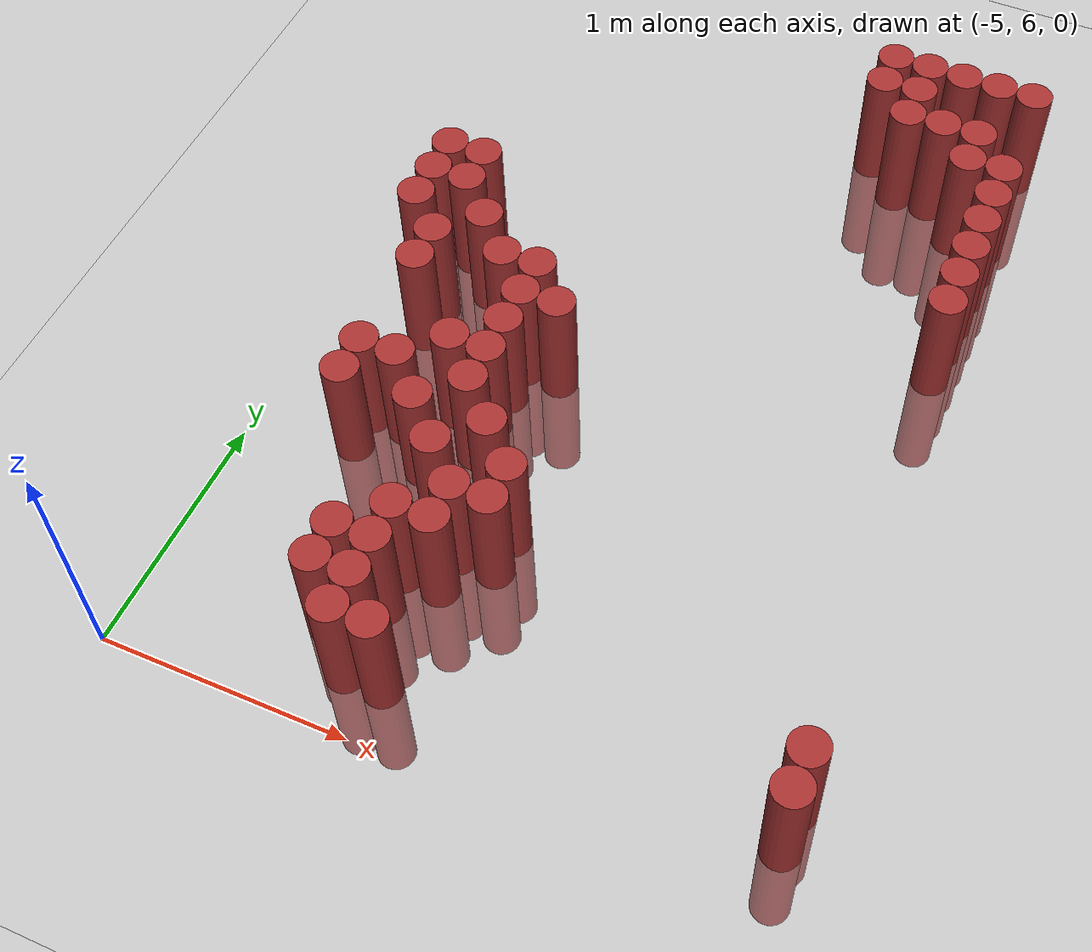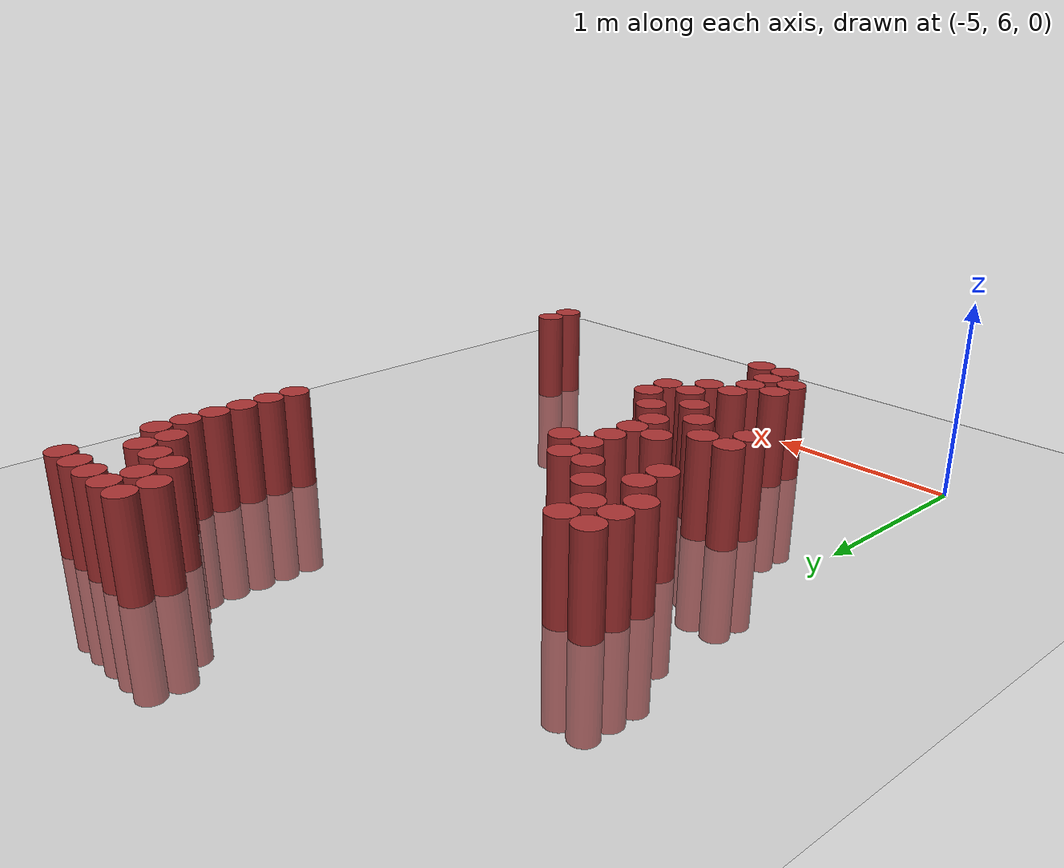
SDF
<sdf version="1.6">
 <world name="default">
  <model name="ground_plane">
   <static>1</static>
   <link name="link">
    <collision name="collision">
     <geometry><plane><normal>0 0 1</normal><size>100 100</size></plane></geometry>
     <surface><friction><ode><mu>100</mu><mu2>50</mu2></ode></friction></surface>
    </collision>
    <visual name="visual">
     <cast_shadows>0</cast_shadows>
     <geometry><plane><normal>0 0 1</normal><size>100 100</size></plane></geometry>
     <material>
      <script><uri>file://media/materials/scripts/gazebo.material</uri><name>Gazebo/Grey</name></script>
     </material>
    </visual>
   </link>
  </model>
  <model name="unit_cylinder_270">
   <static>1</static>
   <pose>-4.725000 8.025000 0.000000 0.000000 0.000000 0.000000</pose>
   <link name="link">
    <inertial>
     <mass>1</mass>
     <inertia><ixx>0.145833</ixx><ixy>0</ixy><ixz>0</ixz><iyy>0.145833</iyy><iyz>0</iyz><izz>0.125</izz></inertia>
    </inertial>
    <collision name="collision">
     <geometry><cylinder><radius>0.075000</radius><length>1</length></cylinder></geometry>
    </collision>
    <visual name="visual">
     <geometry><cylinder><radius>0.075000</radius><length>1</length></cylinder></geometry>
     <material>
      <ambient>0.648000 0.192000 0.192000 1</ambient>
      <diffuse>0.648000 0.192000 0.192000 1</diffuse>
     </material>
     <material>
      <script><name>Gazebo/Grey</name><uri>file://media/materials/scripts/gazebo.material</uri></script>
     </material>
    </visual>
   </link>
  </model>
  <model name="unit_cylinder_271">
   <static>1</static>
   <pose>-4.725000 8.175000 0.000000 0.000000 0.000000 0.000000</pose>
   <link name="link">
    <inertial>
     <mass>1</mass>
     <inertia><ixx>0.145833</ixx><ixy>0</ixy><ixz>0</ixz><iyy>0.145833</iyy><iyz>0</iyz><izz>0.125</izz></inertia>
    </inertial>
    <collision name="collision">
     <geometry><cylinder><radius>0.075000</radius><length>1</length></cylinder></geometry>
    </collision>
    <visual name="visual">
     <geometry><cylinder><radius>0.075000</radius><length>1</length></cylinder></geometry>
     <material>
      <ambient>0.648000 0.192000 0.192000 1</ambient>
      <diffuse>0.648000 0.192000 0.192000 1</diffuse>
     </material>
     <material>
      <script><name>Gazebo/Grey</name><uri>file://media/materials/scripts/gazebo.material</uri></script>
     </material>
    </visual>
   </link>
  </model>
  <model name="unit_cylinder_272">
   <static>1</static>
   <pose>-4.725000 8.325000 0.000000 0.000000 0.000000 0.000000</pose>
   <link name="link">
    <inertial>
     <mass>1</mass>
     <inertia><ixx>0.145833</ixx><ixy>0</ixy><ixz>0</ixz><iyy>0.145833</iyy><iyz>0</iyz><izz>0.125</izz></inertia>
    </inertial>
    <collision name="collision">
     <geometry><cylinder><radius>0.075000</radius><length>1</length></cylinder></geometry>
    </collision>
    <visual name="visual">
     <geometry><cylinder><radius>0.075000</radius><length>1</length></cylinder></geometry>
     <material>
      <ambient>0.648000 0.192000 0.192000 1</ambient>
      <diffuse>0.648000 0.192000 0.192000 1</diffuse>
     </material>
     <material>
      <script><name>Gazebo/Grey</name><uri>file://media/materials/scripts/gazebo.material</uri></script>
     </material>
    </visual>
   </link>
  </model>
  <model name="unit_cylinder_275">
   <static>1</static>
   <pose>-4.575000 7.125000 0.000000 0.000000 0.000000 0.000000</pose>
   <link name="link">
    <inertial>
     <mass>1</mass>
     <inertia><ixx>0.145833</ixx><ixy>0</ixy><ixz>0</ixz><iyy>0.145833</iyy><iyz>0</iyz><izz>0.125</izz></inertia>
    </inertial>
    <collision name="collision">
     <geometry><cylinder><radius>0.075000</radius><length>1</length></cylinder></geometry>
    </collision>
    <visual name="visual">
     <geometry><cylinder><radius>0.075000</radius><length>1</length></cylinder></geometry>
     <material>
      <ambient>0.648000 0.192000 0.192000 1</ambient>
      <diffuse>0.648000 0.192000 0.192000 1</diffuse>
     </material>
     <material>
      <script><name>Gazebo/Grey</name><uri>file://media/materials/scripts/gazebo.material</uri></script>
     </material>
    </visual>
   </link>
  </model>
  <model name="unit_cylinder_276">
   <static>1</static>
   <pose>-4.575000 7.275000 0.000000 0.000000 0.000000 0.000000</pose>
   <link name="link">
    <inertial>
     <mass>1</mass>
     <inertia><ixx>0.145833</ixx><ixy>0</ixy><ixz>0</ixz><iyy>0.145833</iyy><iyz>0</iyz><izz>0.125</izz></inertia>
    </inertial>
    <collision name="collision">
     <geometry><cylinder><radius>0.075000</radius><length>1</length></cylinder></geometry>
    </collision>
    <visual name="visual">
     <geometry><cylinder><radius>0.075000</radius><length>1</length></cylinder></geometry>
     <material>
      <ambient>0.648000 0.192000 0.192000 1</ambient>
      <diffuse>0.648000 0.192000 0.192000 1</diffuse>
     </material>
     <material>
      <script><name>Gazebo/Grey</name><uri>file://media/materials/scripts/gazebo.material</uri></script>
     </material>
    </visual>
   </link>
  </model>
  <model name="unit_cylinder_277">
   <static>1</static>
   <pose>-4.575000 7.725000 0.000000 0.000000 0.000000 0.000000</pose>
   <link name="link">
    <inertial>
     <mass>1</mass>
     <inertia><ixx>0.145833</ixx><ixy>0</ixy><ixz>0</ixz><iyy>0.145833</iyy><iyz>0</iyz><izz>0.125</izz></inertia>
    </inertial>
    <collision name="collision">
     <geometry><cylinder><radius>0.075000</radius><length>1</length></cylinder></geometry>
    </collision>
    <visual name="visual">
     <geometry><cylinder><radius>0.075000</radius><length>1</length></cylinder></geometry>
     <material>
      <ambient>0.648000 0.192000 0.192000 1</ambient>
      <diffuse>0.648000 0.192000 0.192000 1</diffuse>
     </material>
     <material>
      <script><name>Gazebo/Grey</name><uri>file://media/materials/scripts/gazebo.material</uri></script>
     </material>
    </visual>
   </link>
  </model>
  <model name="unit_cylinder_278">
   <static>1</static>
   <pose>-4.575000 7.875000 0.000000 0.000000 0.000000 0.000000</pose>
   <link name="link">
    <inertial>
     <mass>1</mass>
     <inertia><ixx>0.145833</ixx><ixy>0</ixy><ixz>0</ixz><iyy>0.145833</iyy><iyz>0</iyz><izz>0.125</izz></inertia>
    </inertial>
    <collision name="collision">
     <geometry><cylinder><radius>0.075000</radius><length>1</length></cylinder></geometry>
    </collision>
    <visual name="visual">
     <geometry><cylinder><radius>0.075000</radius><length>1</length></cylinder></geometry>
     <material>
      <ambient>0.648000 0.192000 0.192000 1</ambient>
      <diffuse>0.648000 0.192000 0.192000 1</diffuse>
     </material>
     <material>
      <script><name>Gazebo/Grey</name><uri>file://media/materials/scripts/gazebo.material</uri></script>
     </material>
    </visual>
   </link>
  </model>
  <model name="unit_cylinder_279">
   <static>1</static>
   <pose>-4.575000 8.175000 0.000000 0.000000 0.000000 0.000000</pose>
   <link name="link">
    <inertial>
     <mass>1</mass>
     <inertia><ixx>0.145833</ixx><ixy>0</ixy><ixz>0</ixz><iyy>0.145833</iyy><iyz>0</iyz><izz>0.125</izz></inertia>
    </inertial>
    <collision name="collision">
     <geometry><cylinder><radius>0.075000</radius><length>1</length></cylinder></geometry>
    </collision>
    <visual name="visual">
     <geometry><cylinder><radius>0.075000</radius><length>1</length></cylinder></geometry>
     <material>
      <ambient>0.648000 0.192000 0.192000 1</ambient>
      <diffuse>0.648000 0.192000 0.192000 1</diffuse>
     </material>
     <material>
      <script><name>Gazebo/Grey</name><uri>file://media/materials/scripts/gazebo.material</uri></script>
     </material>
    </visual>
   </link>
  </model>
  <model name="unit_cylinder_280">
   <static>1</static>
   <pose>-4.575000 8.325000 0.000000 0.000000 0.000000 0.000000</pose>
   <link name="link">
    <inertial>
     <mass>1</mass>
     <inertia><ixx>0.145833</ixx><ixy>0</ixy><ixz>0</ixz><iyy>0.145833</iyy><iyz>0</iyz><izz>0.125</izz></inertia>
    </inertial>
    <collision name="collision">
     <geometry><cylinder><radius>0.075000</radius><length>1</length></cylinder></geometry>
    </collision>
    <visual name="visual">
     <geometry><cylinder><radius>0.075000</radius><length>1</length></cylinder></geometry>
     <material>
      <ambient>0.648000 0.192000 0.192000 1</ambient>
      <diffuse>0.648000 0.192000 0.192000 1</diffuse>
     </material>
     <material>
      <script><name>Gazebo/Grey</name><uri>file://media/materials/scripts/gazebo.material</uri></script>
     </material>
    </visual>
   </link>
  </model>
  <model name="unit_cylinder_283">
   <static>1</static>
   <pose>-4.425000 7.275000 0.000000 0.000000 0.000000 0.000000</pose>
   <link name="link">
    <inertial>
     <mass>1</mass>
     <inertia><ixx>0.145833</ixx><ixy>0</ixy><ixz>0</ixz><iyy>0.145833</iyy><iyz>0</iyz><izz>0.125</izz></inertia>
    </inertial>
    <collision name="collision">
     <geometry><cylinder><radius>0.075000</radius><length>1</length></cylinder></geometry>
    </collision>
    <visual name="visual">
     <geometry><cylinder><radius>0.075000</radius><length>1</length></cylinder></geometry>
     <material>
      <ambient>0.648000 0.192000 0.192000 1</ambient>
      <diffuse>0.648000 0.192000 0.192000 1</diffuse>
     </material>
     <material>
      <script><name>Gazebo/Grey</name><uri>file://media/materials/scripts/gazebo.material</uri></script>
     </material>
    </visual>
   </link>
  </model>
  <model name="unit_cylinder_284">
   <static>1</static>
   <pose>-4.425000 8.025000 0.000000 0.000000 0.000000 0.000000</pose>
   <link name="link">
    <inertial>
     <mass>1</mass>
     <inertia><ixx>0.145833</ixx><ixy>0</ixy><ixz>0</ixz><iyy>0.145833</iyy><iyz>0</iyz><izz>0.125</izz></inertia>
    </inertial>
    <collision name="collision">
     <geometry><cylinder><radius>0.075000</radius><length>1</length></cylinder></geometry>
    </collision>
    <visual name="visual">
     <geometry><cylinder><radius>0.075000</radius><length>1</length></cylinder></geometry>
     <material>
      <ambient>0.648000 0.192000 0.192000 1</ambient>
      <diffuse>0.648000 0.192000 0.192000 1</diffuse>
     </material>
     <material>
      <script><name>Gazebo/Grey</name><uri>file://media/materials/scripts/gazebo.material</uri></script>
     </material>
    </visual>
   </link>
  </model>
  <model name="unit_cylinder_288">
   <static>1</static>
   <pose>-4.275000 6.375000 0.000000 0.000000 0.000000 0.000000</pose>
   <link name="link">
    <inertial>
     <mass>1</mass>
     <inertia><ixx>0.145833</ixx><ixy>0</ixy><ixz>0</ixz><iyy>0.145833</iyy><iyz>0</iyz><izz>0.125</izz></inertia>
    </inertial>
    <collision name="collision">
     <geometry><cylinder><radius>0.075000</radius><length>1</length></cylinder></geometry>
    </collision>
    <visual name="visual">
     <geometry><cylinder><radius>0.075000</radius><length>1</length></cylinder></geometry>
     <material>
      <ambient>0.648000 0.192000 0.192000 1</ambient>
      <diffuse>0.648000 0.192000 0.192000 1</diffuse>
     </material>
     <material>
      <script><name>Gazebo/Grey</name><uri>file://media/materials/scripts/gazebo.material</uri></script>
     </material>
    </visual>
   </link>
  </model>
  <model name="unit_cylinder_289">
   <static>1</static>
   <pose>-4.275000 6.525000 0.000000 0.000000 0.000000 0.000000</pose>
   <link name="link">
    <inertial>
     <mass>1</mass>
     <inertia><ixx>0.145833</ixx><ixy>0</ixy><ixz>0</ixz><iyy>0.145833</iyy><iyz>0</iyz><izz>0.125</izz></inertia>
    </inertial>
    <collision name="collision">
     <geometry><cylinder><radius>0.075000</radius><length>1</length></cylinder></geometry>
    </collision>
    <visual name="visual">
     <geometry><cylinder><radius>0.075000</radius><length>1</length></cylinder></geometry>
     <material>
      <ambient>0.648000 0.192000 0.192000 1</ambient>
      <diffuse>0.648000 0.192000 0.192000 1</diffuse>
     </material>
     <material>
      <script><name>Gazebo/Grey</name><uri>file://media/materials/scripts/gazebo.material</uri></script>
     </material>
    </visual>
   </link>
  </model>
  <model name="unit_cylinder_290">
   <static>1</static>
   <pose>-4.275000 7.125000 0.000000 0.000000 0.000000 0.000000</pose>
   <link name="link">
    <inertial>
     <mass>1</mass>
     <inertia><ixx>0.145833</ixx><ixy>0</ixy><ixz>0</ixz><iyy>0.145833</iyy><iyz>0</iyz><izz>0.125</izz></inertia>
    </inertial>
    <collision name="collision">
     <geometry><cylinder><radius>0.075000</radius><length>1</length></cylinder></geometry>
    </collision>
    <visual name="visual">
     <geometry><cylinder><radius>0.075000</radius><length>1</length></cylinder></geometry>
     <material>
      <ambient>0.648000 0.192000 0.192000 1</ambient>
      <diffuse>0.648000 0.192000 0.192000 1</diffuse>
     </material>
     <material>
      <script><name>Gazebo/Grey</name><uri>file://media/materials/scripts/gazebo.material</uri></script>
     </material>
    </visual>
   </link>
  </model>
  <model name="unit_cylinder_291">
   <static>1</static>
   <pose>-4.275000 7.425000 0.000000 0.000000 0.000000 0.000000</pose>
   <link name="link">
    <inertial>
     <mass>1</mass>
     <inertia><ixx>0.145833</ixx><ixy>0</ixy><ixz>0</ixz><iyy>0.145833</iyy><iyz>0</iyz><izz>0.125</izz></inertia>
    </inertial>
    <collision name="collision">
     <geometry><cylinder><radius>0.075000</radius><length>1</length></cylinder></geometry>
    </collision>
    <visual name="visual">
     <geometry><cylinder><radius>0.075000</radius><length>1</length></cylinder></geometry>
     <material>
      <ambient>0.648000 0.192000 0.192000 1</ambient>
      <diffuse>0.648000 0.192000 0.192000 1</diffuse>
     </material>
     <material>
      <script><name>Gazebo/Grey</name><uri>file://media/materials/scripts/gazebo.material</uri></script>
     </material>
    </visual>
   </link>
  </model>
  <model name="unit_cylinder_292">
   <static>1</static>
   <pose>-4.275000 7.875000 0.000000 0.000000 0.000000 0.000000</pose>
   <link name="link">
    <inertial>
     <mass>1</mass>
     <inertia><ixx>0.145833</ixx><ixy>0</ixy><ixz>0</ixz><iyy>0.145833</iyy><iyz>0</iyz><izz>0.125</izz></inertia>
    </inertial>
    <collision name="collision">
     <geometry><cylinder><radius>0.075000</radius><length>1</length></cylinder></geometry>
    </collision>
    <visual name="visual">
     <geometry><cylinder><radius>0.075000</radius><length>1</length></cylinder></geometry>
     <material>
      <ambient>0.648000 0.192000 0.192000 1</ambient>
      <diffuse>0.648000 0.192000 0.192000 1</diffuse>
     </material>
     <material>
      <script><name>Gazebo/Grey</name><uri>file://media/materials/scripts/gazebo.material</uri></script>
     </material>
    </visual>
   </link>
  </model>
  <model name="unit_cylinder_295">
   <static>1</static>
   <pose>-4.125000 6.225000 0.000000 0.000000 0.000000 0.000000</pose>
   <link name="link">
    <inertial>
     <mass>1</mass>
     <inertia><ixx>0.145833</ixx><ixy>0</ixy><ixz>0</ixz><iyy>0.145833</iyy><iyz>0</iyz><izz>0.125</izz></inertia>
    </inertial>
    <collision name="collision">
     <geometry><cylinder><radius>0.075000</radius><length>1</length></cylinder></geometry>
    </collision>
    <visual name="visual">
     <geometry><cylinder><radius>0.075000</radius><length>1</length></cylinder></geometry>
     <material>
      <ambient>0.648000 0.192000 0.192000 1</ambient>
      <diffuse>0.648000 0.192000 0.192000 1</diffuse>
     </material>
     <material>
      <script><name>Gazebo/Grey</name><uri>file://media/materials/scripts/gazebo.material</uri></script>
     </material>
    </visual>
   </link>
  </model>
  <model name="unit_cylinder_296">
   <static>1</static>
   <pose>-4.125000 6.375000 0.000000 0.000000 0.000000 0.000000</pose>
   <link name="link">
    <inertial>
     <mass>1</mass>
     <inertia><ixx>0.145833</ixx><ixy>0</ixy><ixz>0</ixz><iyy>0.145833</iyy><iyz>0</iyz><izz>0.125</izz></inertia>
    </inertial>
    <collision name="collision">
     <geometry><cylinder><radius>0.075000</radius><length>1</length></cylinder></geometry>
    </collision>
    <visual name="visual">
     <geometry><cylinder><radius>0.075000</radius><length>1</length></cylinder></geometry>
     <material>
      <ambient>0.648000 0.192000 0.192000 1</ambient>
      <diffuse>0.648000 0.192000 0.192000 1</diffuse>
     </material>
     <material>
      <script><name>Gazebo/Grey</name><uri>file://media/materials/scripts/gazebo.material</uri></script>
     </material>
    </visual>
   </link>
  </model>
  <model name="unit_cylinder_297">
   <static>1</static>
   <pose>-4.125000 6.525000 0.000000 0.000000 0.000000 0.000000</pose>
   <link name="link">
    <inertial>
     <mass>1</mass>
     <inertia><ixx>0.145833</ixx><ixy>0</ixy><ixz>0</ixz><iyy>0.145833</iyy><iyz>0</iyz><izz>0.125</izz></inertia>
    </inertial>
    <collision name="collision">
     <geometry><cylinder><radius>0.075000</radius><length>1</length></cylinder></geometry>
    </collision>
    <visual name="visual">
     <geometry><cylinder><radius>0.075000</radius><length>1</length></cylinder></geometry>
     <material>
      <ambient>0.648000 0.192000 0.192000 1</ambient>
      <diffuse>0.648000 0.192000 0.192000 1</diffuse>
     </material>
     <material>
      <script><name>Gazebo/Grey</name><uri>file://media/materials/scripts/gazebo.material</uri></script>
     </material>
    </visual>
   </link>
  </model>
  <model name="unit_cylinder_298">
   <static>1</static>
   <pose>-4.125000 6.675000 0.000000 0.000000 0.000000 0.000000</pose>
   <link name="link">
    <inertial>
     <mass>1</mass>
     <inertia><ixx>0.145833</ixx><ixy>0</ixy><ixz>0</ixz><iyy>0.145833</iyy><iyz>0</iyz><izz>0.125</izz></inertia>
    </inertial>
    <collision name="collision">
     <geometry><cylinder><radius>0.075000</radius><length>1</length></cylinder></geometry>
    </collision>
    <visual name="visual">
     <geometry><cylinder><radius>0.075000</radius><length>1</length></cylinder></geometry>
     <material>
      <ambient>0.648000 0.192000 0.192000 1</ambient>
      <diffuse>0.648000 0.192000 0.192000 1</diffuse>
     </material>
     <material>
      <script><name>Gazebo/Grey</name><uri>file://media/materials/scripts/gazebo.material</uri></script>
     </material>
    </visual>
   </link>
  </model>
  <model name="unit_cylinder_299">
   <static>1</static>
   <pose>-4.125000 6.975000 0.000000 0.000000 0.000000 0.000000</pose>
   <link name="link">
    <inertial>
     <mass>1</mass>
     <inertia><ixx>0.145833</ixx><ixy>0</ixy><ixz>0</ixz><iyy>0.145833</iyy><iyz>0</iyz><izz>0.125</izz></inertia>
    </inertial>
    <collision name="collision">
     <geometry><cylinder><radius>0.075000</radius><length>1</length></cylinder></geometry>
    </collision>
    <visual name="visual">
     <geometry><cylinder><radius>0.075000</radius><length>1</length></cylinder></geometry>
     <material>
      <ambient>0.648000 0.192000 0.192000 1</ambient>
      <diffuse>0.648000 0.192000 0.192000 1</diffuse>
     </material>
     <material>
      <script><name>Gazebo/Grey</name><uri>file://media/materials/scripts/gazebo.material</uri></script>
     </material>
    </visual>
   </link>
  </model>
  <model name="unit_cylinder_300">
   <static>1</static>
   <pose>-4.125000 7.275000 0.000000 0.000000 0.000000 0.000000</pose>
   <link name="link">
    <inertial>
     <mass>1</mass>
     <inertia><ixx>0.145833</ixx><ixy>0</ixy><ixz>0</ixz><iyy>0.145833</iyy><iyz>0</iyz><izz>0.125</izz></inertia>
    </inertial>
    <collision name="collision">
     <geometry><cylinder><radius>0.075000</radius><length>1</length></cylinder></geometry>
    </collision>
    <visual name="visual">
     <geometry><cylinder><radius>0.075000</radius><length>1</length></cylinder></geometry>
     <material>
      <ambient>0.648000 0.192000 0.192000 1</ambient>
      <diffuse>0.648000 0.192000 0.192000 1</diffuse>
     </material>
     <material>
      <script><name>Gazebo/Grey</name><uri>file://media/materials/scripts/gazebo.material</uri></script>
     </material>
    </visual>
   </link>
  </model>
  <model name="unit_cylinder_301">
   <static>1</static>
   <pose>-4.125000 7.425000 0.000000 0.000000 0.000000 0.000000</pose>
   <link name="link">
    <inertial>
     <mass>1</mass>
     <inertia><ixx>0.145833</ixx><ixy>0</ixy><ixz>0</ixz><iyy>0.145833</iyy><iyz>0</iyz><izz>0.125</izz></inertia>
    </inertial>
    <collision name="collision">
     <geometry><cylinder><radius>0.075000</radius><length>1</length></cylinder></geometry>
    </collision>
    <visual name="visual">
     <geometry><cylinder><radius>0.075000</radius><length>1</length></cylinder></geometry>
     <material>
      <ambient>0.648000 0.192000 0.192000 1</ambient>
      <diffuse>0.648000 0.192000 0.192000 1</diffuse>
     </material>
     <material>
      <script><name>Gazebo/Grey</name><uri>file://media/materials/scripts/gazebo.material</uri></script>
     </material>
    </visual>
   </link>
  </model>
  <model name="unit_cylinder_302">
   <static>1</static>
   <pose>-4.125000 7.575000 0.000000 0.000000 0.000000 0.000000</pose>
   <link name="link">
    <inertial>
     <mass>1</mass>
     <inertia><ixx>0.145833</ixx><ixy>0</ixy><ixz>0</ixz><iyy>0.145833</iyy><iyz>0</iyz><izz>0.125</izz></inertia>
    </inertial>
    <collision name="collision">
     <geometry><cylinder><radius>0.075000</radius><length>1</length></cylinder></geometry>
    </collision>
    <visual name="visual">
     <geometry><cylinder><radius>0.075000</radius><length>1</length></cylinder></geometry>
     <material>
      <ambient>0.648000 0.192000 0.192000 1</ambient>
      <diffuse>0.648000 0.192000 0.192000 1</diffuse>
     </material>
     <material>
      <script><name>Gazebo/Grey</name><uri>file://media/materials/scripts/gazebo.material</uri></script>
     </material>
    </visual>
   </link>
  </model>
  <model name="unit_cylinder_303">
   <static>1</static>
   <pose>-4.125000 7.725000 0.000000 0.000000 0.000000 0.000000</pose>
   <link name="link">
    <inertial>
     <mass>1</mass>
     <inertia><ixx>0.145833</ixx><ixy>0</ixy><ixz>0</ixz><iyy>0.145833</iyy><iyz>0</iyz><izz>0.125</izz></inertia>
    </inertial>
    <collision name="collision">
     <geometry><cylinder><radius>0.075000</radius><length>1</length></cylinder></geometry>
    </collision>
    <visual name="visual">
     <geometry><cylinder><radius>0.075000</radius><length>1</length></cylinder></geometry>
     <material>
      <ambient>0.648000 0.192000 0.192000 1</ambient>
      <diffuse>0.648000 0.192000 0.192000 1</diffuse>
     </material>
     <material>
      <script><name>Gazebo/Grey</name><uri>file://media/materials/scripts/gazebo.material</uri></script>
     </material>
    </visual>
   </link>
  </model>
  <model name="unit_cylinder_304">
   <static>1</static>
   <pose>-4.125000 7.875000 0.000000 0.000000 0.000000 0.000000</pose>
   <link name="link">
    <inertial>
     <mass>1</mass>
     <inertia><ixx>0.145833</ixx><ixy>0</ixy><ixz>0</ixz><iyy>0.145833</iyy><iyz>0</iyz><izz>0.125</izz></inertia>
    </inertial>
    <collision name="collision">
     <geometry><cylinder><radius>0.075000</radius><length>1</length></cylinder></geometry>
    </collision>
    <visual name="visual">
     <geometry><cylinder><radius>0.075000</radius><length>1</length></cylinder></geometry>
     <material>
      <ambient>0.648000 0.192000 0.192000 1</ambient>
      <diffuse>0.648000 0.192000 0.192000 1</diffuse>
     </material>
     <material>
      <script><name>Gazebo/Grey</name><uri>file://media/materials/scripts/gazebo.material</uri></script>
     </material>
    </visual>
   </link>
  </model>
  <model name="unit_cylinder_306">
   <static>1</static>
   <pose>-3.975000 6.225000 0.000000 0.000000 0.000000 0.000000</pose>
   <link name="link">
    <inertial>
     <mass>1</mass>
     <inertia><ixx>0.145833</ixx><ixy>0</ixy><ixz>0</ixz><iyy>0.145833</iyy><iyz>0</iyz><izz>0.125</izz></inertia>
    </inertial>
    <collision name="collision">
     <geometry><cylinder><radius>0.075000</radius><length>1</length></cylinder></geometry>
    </collision>
    <visual name="visual">
     <geometry><cylinder><radius>0.075000</radius><length>1</length></cylinder></geometry>
     <material>
      <ambient>0.648000 0.192000 0.192000 1</ambient>
      <diffuse>0.648000 0.192000 0.192000 1</diffuse>
     </material>
     <material>
      <script><name>Gazebo/Grey</name><uri>file://media/materials/scripts/gazebo.material</uri></script>
     </material>
    </visual>
   </link>
  </model>
  <model name="unit_cylinder_307">
   <static>1</static>
   <pose>-3.975000 6.675000 0.000000 0.000000 0.000000 0.000000</pose>
   <link name="link">
    <inertial>
     <mass>1</mass>
     <inertia><ixx>0.145833</ixx><ixy>0</ixy><ixz>0</ixz><iyy>0.145833</iyy><iyz>0</iyz><izz>0.125</izz></inertia>
    </inertial>
    <collision name="collision">
     <geometry><cylinder><radius>0.075000</radius><length>1</length></cylinder></geometry>
    </collision>
    <visual name="visual">
     <geometry><cylinder><radius>0.075000</radius><length>1</length></cylinder></geometry>
     <material>
      <ambient>0.648000 0.192000 0.192000 1</ambient>
      <diffuse>0.648000 0.192000 0.192000 1</diffuse>
     </material>
     <material>
      <script><name>Gazebo/Grey</name><uri>file://media/materials/scripts/gazebo.material</uri></script>
     </material>
    </visual>
   </link>
  </model>
  <model name="unit_cylinder_308">
   <static>1</static>
   <pose>-3.975000 6.825000 0.000000 0.000000 0.000000 0.000000</pose>
   <link name="link">
    <inertial>
     <mass>1</mass>
     <inertia><ixx>0.145833</ixx><ixy>0</ixy><ixz>0</ixz><iyy>0.145833</iyy><iyz>0</iyz><izz>0.125</izz></inertia>
    </inertial>
    <collision name="collision">
     <geometry><cylinder><radius>0.075000</radius><length>1</length></cylinder></geometry>
    </collision>
    <visual name="visual">
     <geometry><cylinder><radius>0.075000</radius><length>1</length></cylinder></geometry>
     <material>
      <ambient>0.648000 0.192000 0.192000 1</ambient>
      <diffuse>0.648000 0.192000 0.192000 1</diffuse>
     </material>
     <material>
      <script><name>Gazebo/Grey</name><uri>file://media/materials/scripts/gazebo.material</uri></script>
     </material>
    </visual>
   </link>
  </model>
  <model name="unit_cylinder_309">
   <static>1</static>
   <pose>-3.975000 7.125000 0.000000 0.000000 0.000000 0.000000</pose>
   <link name="link">
    <inertial>
     <mass>1</mass>
     <inertia><ixx>0.145833</ixx><ixy>0</ixy><ixz>0</ixz><iyy>0.145833</iyy><iyz>0</iyz><izz>0.125</izz></inertia>
    </inertial>
    <collision name="collision">
     <geometry><cylinder><radius>0.075000</radius><length>1</length></cylinder></geometry>
    </collision>
    <visual name="visual">
     <geometry><cylinder><radius>0.075000</radius><length>1</length></cylinder></geometry>
     <material>
      <ambient>0.648000 0.192000 0.192000 1</ambient>
      <diffuse>0.648000 0.192000 0.192000 1</diffuse>
     </material>
     <material>
      <script><name>Gazebo/Grey</name><uri>file://media/materials/scripts/gazebo.material</uri></script>
     </material>
    </visual>
   </link>
  </model>
  <model name="unit_cylinder_310">
   <static>1</static>
   <pose>-3.975000 7.725000 0.000000 0.000000 0.000000 0.000000</pose>
   <link name="link">
    <inertial>
     <mass>1</mass>
     <inertia><ixx>0.145833</ixx><ixy>0</ixy><ixz>0</ixz><iyy>0.145833</iyy><iyz>0</iyz><izz>0.125</izz></inertia>
    </inertial>
    <collision name="collision">
     <geometry><cylinder><radius>0.075000</radius><length>1</length></cylinder></geometry>
    </collision>
    <visual name="visual">
     <geometry><cylinder><radius>0.075000</radius><length>1</length></cylinder></geometry>
     <material>
      <ambient>0.648000 0.192000 0.192000 1</ambient>
      <diffuse>0.648000 0.192000 0.192000 1</diffuse>
     </material>
     <material>
      <script><name>Gazebo/Grey</name><uri>file://media/materials/scripts/gazebo.material</uri></script>
     </material>
    </visual>
   </link>
  </model>
  <model name="unit_cylinder_311">
   <static>1</static>
   <pose>-3.825000 6.825000 0.000000 0.000000 0.000000 0.000000</pose>
   <link name="link">
    <inertial>
     <mass>1</mass>
     <inertia><ixx>0.145833</ixx><ixy>0</ixy><ixz>0</ixz><iyy>0.145833</iyy><iyz>0</iyz><izz>0.125</izz></inertia>
    </inertial>
    <collision name="collision">
     <geometry><cylinder><radius>0.075000</radius><length>1</length></cylinder></geometry>
    </collision>
    <visual name="visual">
     <geometry><cylinder><radius>0.075000</radius><length>1</length></cylinder></geometry>
     <material>
      <ambient>0.648000 0.192000 0.192000 1</ambient>
      <diffuse>0.648000 0.192000 0.192000 1</diffuse>
     </material>
     <material>
      <script><name>Gazebo/Grey</name><uri>file://media/materials/scripts/gazebo.material</uri></script>
     </material>
    </visual>
   </link>
  </model>
  <model name="unit_cylinder_312">
   <static>1</static>
   <pose>-3.825000 6.975000 0.000000 0.000000 0.000000 0.000000</pose>
   <link name="link">
    <inertial>
     <mass>1</mass>
     <inertia><ixx>0.145833</ixx><ixy>0</ixy><ixz>0</ixz><iyy>0.145833</iyy><iyz>0</iyz><izz>0.125</izz></inertia>
    </inertial>
    <collision name="collision">
     <geometry><cylinder><radius>0.075000</radius><length>1</length></cylinder></geometry>
    </collision>
    <visual name="visual">
     <geometry><cylinder><radius>0.075000</radius><length>1</length></cylinder></geometry>
     <material>
      <ambient>0.648000 0.192000 0.192000 1</ambient>
      <diffuse>0.648000 0.192000 0.192000 1</diffuse>
     </material>
     <material>
      <script><name>Gazebo/Grey</name><uri>file://media/materials/scripts/gazebo.material</uri></script>
     </material>
    </visual>
   </link>
  </model>
  <model name="unit_cylinder_313">
   <static>1</static>
   <pose>-3.225000 9.375000 0.000000 0.000000 0.000000 0.000000</pose>
   <link name="link">
    <inertial>
     <mass>1</mass>
     <inertia><ixx>0.145833</ixx><ixy>0</ixy><ixz>0</ixz><iyy>0.145833</iyy><iyz>0</iyz><izz>0.125</izz></inertia>
    </inertial>
    <collision name="collision">
     <geometry><cylinder><radius>0.075000</radius><length>1</length></cylinder></geometry>
    </collision>
    <visual name="visual">
     <geometry><cylinder><radius>0.075000</radius><length>1</length></cylinder></geometry>
     <material>
      <ambient>0.648000 0.192000 0.192000 1</ambient>
      <diffuse>0.648000 0.192000 0.192000 1</diffuse>
     </material>
     <material>
      <script><name>Gazebo/Grey</name><uri>file://media/materials/scripts/gazebo.material</uri></script>
     </material>
    </visual>
   </link>
  </model>
  <model name="unit_cylinder_314">
   <static>1</static>
   <pose>-3.225000 9.525000 0.000000 0.000000 0.000000 0.000000</pose>
   <link name="link">
    <inertial>
     <mass>1</mass>
     <inertia><ixx>0.145833</ixx><ixy>0</ixy><ixz>0</ixz><iyy>0.145833</iyy><iyz>0</iyz><izz>0.125</izz></inertia>
    </inertial>
    <collision name="collision">
     <geometry><cylinder><radius>0.075000</radius><length>1</length></cylinder></geometry>
    </collision>
    <visual name="visual">
     <geometry><cylinder><radius>0.075000</radius><length>1</length></cylinder></geometry>
     <material>
      <ambient>0.648000 0.192000 0.192000 1</ambient>
      <diffuse>0.648000 0.192000 0.192000 1</diffuse>
     </material>
     <material>
      <script><name>Gazebo/Grey</name><uri>file://media/materials/scripts/gazebo.material</uri></script>
     </material>
    </visual>
   </link>
  </model>
  <model name="unit_cylinder_315">
   <static>1</static>
   <pose>-3.075000 9.225000 0.000000 0.000000 0.000000 0.000000</pose>
   <link name="link">
    <inertial>
     <mass>1</mass>
     <inertia><ixx>0.145833</ixx><ixy>0</ixy><ixz>0</ixz><iyy>0.145833</iyy><iyz>0</iyz><izz>0.125</izz></inertia>
    </inertial>
    <collision name="collision">
     <geometry><cylinder><radius>0.075000</radius><length>1</length></cylinder></geometry>
    </collision>
    <visual name="visual">
     <geometry><cylinder><radius>0.075000</radius><length>1</length></cylinder></geometry>
     <material>
      <ambient>0.648000 0.192000 0.192000 1</ambient>
      <diffuse>0.648000 0.192000 0.192000 1</diffuse>
     </material>
     <material>
      <script><name>Gazebo/Grey</name><uri>file://media/materials/scripts/gazebo.material</uri></script>
     </material>
    </visual>
   </link>
  </model>
  <model name="unit_cylinder_316">
   <static>1</static>
   <pose>-3.075000 9.375000 0.000000 0.000000 0.000000 0.000000</pose>
   <link name="link">
    <inertial>
     <mass>1</mass>
     <inertia><ixx>0.145833</ixx><ixy>0</ixy><ixz>0</ixz><iyy>0.145833</iyy><iyz>0</iyz><izz>0.125</izz></inertia>
    </inertial>
    <collision name="collision">
     <geometry><cylinder><radius>0.075000</radius><length>1</length></cylinder></geometry>
    </collision>
    <visual name="visual">
     <geometry><cylinder><radius>0.075000</radius><length>1</length></cylinder></geometry>
     <material>
      <ambient>0.648000 0.192000 0.192000 1</ambient>
      <diffuse>0.648000 0.192000 0.192000 1</diffuse>
     </material>
     <material>
      <script><name>Gazebo/Grey</name><uri>file://media/materials/scripts/gazebo.material</uri></script>
     </material>
    </visual>
   </link>
  </model>
  <model name="unit_cylinder_317">
   <static>1</static>
   <pose>-3.075000 9.525000 0.000000 0.000000 0.000000 0.000000</pose>
   <link name="link">
    <inertial>
     <mass>1</mass>
     <inertia><ixx>0.145833</ixx><ixy>0</ixy><ixz>0</ixz><iyy>0.145833</iyy><iyz>0</iyz><izz>0.125</izz></inertia>
    </inertial>
    <collision name="collision">
     <geometry><cylinder><radius>0.075000</radius><length>1</length></cylinder></geometry>
    </collision>
    <visual name="visual">
     <geometry><cylinder><radius>0.075000</radius><length>1</length></cylinder></geometry>
     <material>
      <ambient>0.648000 0.192000 0.192000 1</ambient>
      <diffuse>0.648000 0.192000 0.192000 1</diffuse>
     </material>
     <material>
      <script><name>Gazebo/Grey</name><uri>file://media/materials/scripts/gazebo.material</uri></script>
     </material>
    </visual>
   </link>
  </model>
  <model name="unit_cylinder_318">
   <static>1</static>
   <pose>-2.925000 9.225000 0.000000 0.000000 0.000000 0.000000</pose>
   <link name="link">
    <inertial>
     <mass>1</mass>
     <inertia><ixx>0.145833</ixx><ixy>0</ixy><ixz>0</ixz><iyy>0.145833</iyy><iyz>0</iyz><izz>0.125</izz></inertia>
    </inertial>
    <collision name="collision">
     <geometry><cylinder><radius>0.075000</radius><length>1</length></cylinder></geometry>
    </collision>
    <visual name="visual">
     <geometry><cylinder><radius>0.075000</radius><length>1</length></cylinder></geometry>
     <material>
      <ambient>0.648000 0.192000 0.192000 1</ambient>
      <diffuse>0.648000 0.192000 0.192000 1</diffuse>
     </material>
     <material>
      <script><name>Gazebo/Grey</name><uri>file://media/materials/scripts/gazebo.material</uri></script>
     </material>
    </visual>
   </link>
  </model>
  <model name="unit_cylinder_319">
   <static>1</static>
   <pose>-2.925000 9.525000 0.000000 0.000000 0.000000 0.000000</pose>
   <link name="link">
    <inertial>
     <mass>1</mass>
     <inertia><ixx>0.145833</ixx><ixy>0</ixy><ixz>0</ixz><iyy>0.145833</iyy><iyz>0</iyz><izz>0.125</izz></inertia>
    </inertial>
    <collision name="collision">
     <geometry><cylinder><radius>0.075000</radius><length>1</length></cylinder></geometry>
    </collision>
    <visual name="visual">
     <geometry><cylinder><radius>0.075000</radius><length>1</length></cylinder></geometry>
     <material>
      <ambient>0.648000 0.192000 0.192000 1</ambient>
      <diffuse>0.648000 0.192000 0.192000 1</diffuse>
     </material>
     <material>
      <script><name>Gazebo/Grey</name><uri>file://media/materials/scripts/gazebo.material</uri></script>
     </material>
    </visual>
   </link>
  </model>
  <model name="unit_cylinder_320">
   <static>1</static>
   <pose>-2.775000 9.075000 0.000000 0.000000 0.000000 0.000000</pose>
   <link name="link">
    <inertial>
     <mass>1</mass>
     <inertia><ixx>0.145833</ixx><ixy>0</ixy><ixz>0</ixz><iyy>0.145833</iyy><iyz>0</iyz><izz>0.125</izz></inertia>
    </inertial>
    <collision name="collision">
     <geometry><cylinder><radius>0.075000</radius><length>1</length></cylinder></geometry>
    </collision>
    <visual name="visual">
     <geometry><cylinder><radius>0.075000</radius><length>1</length></cylinder></geometry>
     <material>
      <ambient>0.648000 0.192000 0.192000 1</ambient>
      <diffuse>0.648000 0.192000 0.192000 1</diffuse>
     </material>
     <material>
      <script><name>Gazebo/Grey</name><uri>file://media/materials/scripts/gazebo.material</uri></script>
     </material>
    </visual>
   </link>
  </model>
  <model name="unit_cylinder_321">
   <static>1</static>
   <pose>-2.775000 9.225000 0.000000 0.000000 0.000000 0.000000</pose>
   <link name="link">
    <inertial>
     <mass>1</mass>
     <inertia><ixx>0.145833</ixx><ixy>0</ixy><ixz>0</ixz><iyy>0.145833</iyy><iyz>0</iyz><izz>0.125</izz></inertia>
    </inertial>
    <collision name="collision">
     <geometry><cylinder><radius>0.075000</radius><length>1</length></cylinder></geometry>
    </collision>
    <visual name="visual">
     <geometry><cylinder><radius>0.075000</radius><length>1</length></cylinder></geometry>
     <material>
      <ambient>0.648000 0.192000 0.192000 1</ambient>
      <diffuse>0.648000 0.192000 0.192000 1</diffuse>
     </material>
     <material>
      <script><name>Gazebo/Grey</name><uri>file://media/materials/scripts/gazebo.material</uri></script>
     </material>
    </visual>
   </link>
  </model>
  <model name="unit_cylinder_322">
   <static>1</static>
   <pose>-2.775000 9.525000 0.000000 0.000000 0.000000 0.000000</pose>
   <link name="link">
    <inertial>
     <mass>1</mass>
     <inertia><ixx>0.145833</ixx><ixy>0</ixy><ixz>0</ixz><iyy>0.145833</iyy><iyz>0</iyz><izz>0.125</izz></inertia>
    </inertial>
    <collision name="collision">
     <geometry><cylinder><radius>0.075000</radius><length>1</length></cylinder></geometry>
    </collision>
    <visual name="visual">
     <geometry><cylinder><radius>0.075000</radius><length>1</length></cylinder></geometry>
     <material>
      <ambient>0.648000 0.192000 0.192000 1</ambient>
      <diffuse>0.648000 0.192000 0.192000 1</diffuse>
     </material>
     <material>
      <script><name>Gazebo/Grey</name><uri>file://media/materials/scripts/gazebo.material</uri></script>
     </material>
    </visual>
   </link>
  </model>
  <model name="unit_cylinder_326">
   <static>1</static>
   <pose>-2.625000 8.325000 0.000000 0.000000 0.000000 0.000000</pose>
   <link name="link">
    <inertial>
     <mass>1</mass>
     <inertia><ixx>0.145833</ixx><ixy>0</ixy><ixz>0</ixz><iyy>0.145833</iyy><iyz>0</iyz><izz>0.125</izz></inertia>
    </inertial>
    <collision name="collision">
     <geometry><cylinder><radius>0.075000</radius><length>1</length></cylinder></geometry>
    </collision>
    <visual name="visual">
     <geometry><cylinder><radius>0.075000</radius><length>1</length></cylinder></geometry>
     <material>
      <ambient>0.648000 0.192000 0.192000 1</ambient>
      <diffuse>0.648000 0.192000 0.192000 1</diffuse>
     </material>
     <material>
      <script><name>Gazebo/Grey</name><uri>file://media/materials/scripts/gazebo.material</uri></script>
     </material>
    </visual>
   </link>
  </model>
  <model name="unit_cylinder_327">
   <static>1</static>
   <pose>-2.625000 8.475000 0.000000 0.000000 0.000000 0.000000</pose>
   <link name="link">
    <inertial>
     <mass>1</mass>
     <inertia><ixx>0.145833</ixx><ixy>0</ixy><ixz>0</ixz><iyy>0.145833</iyy><iyz>0</iyz><izz>0.125</izz></inertia>
    </inertial>
    <collision name="collision">
     <geometry><cylinder><radius>0.075000</radius><length>1</length></cylinder></geometry>
    </collision>
    <visual name="visual">
     <geometry><cylinder><radius>0.075000</radius><length>1</length></cylinder></geometry>
     <material>
      <ambient>0.648000 0.192000 0.192000 1</ambient>
      <diffuse>0.648000 0.192000 0.192000 1</diffuse>
     </material>
     <material>
      <script><name>Gazebo/Grey</name><uri>file://media/materials/scripts/gazebo.material</uri></script>
     </material>
    </visual>
   </link>
  </model>
  <model name="unit_cylinder_328">
   <static>1</static>
   <pose>-2.625000 8.625000 0.000000 0.000000 0.000000 0.000000</pose>
   <link name="link">
    <inertial>
     <mass>1</mass>
     <inertia><ixx>0.145833</ixx><ixy>0</ixy><ixz>0</ixz><iyy>0.145833</iyy><iyz>0</iyz><izz>0.125</izz></inertia>
    </inertial>
    <collision name="collision">
     <geometry><cylinder><radius>0.075000</radius><length>1</length></cylinder></geometry>
    </collision>
    <visual name="visual">
     <geometry><cylinder><radius>0.075000</radius><length>1</length></cylinder></geometry>
     <material>
      <ambient>0.648000 0.192000 0.192000 1</ambient>
      <diffuse>0.648000 0.192000 0.192000 1</diffuse>
     </material>
     <material>
      <script><name>Gazebo/Grey</name><uri>file://media/materials/scripts/gazebo.material</uri></script>
     </material>
    </visual>
   </link>
  </model>
  <model name="unit_cylinder_329">
   <static>1</static>
   <pose>-2.625000 8.775000 0.000000 0.000000 0.000000 0.000000</pose>
   <link name="link">
    <inertial>
     <mass>1</mass>
     <inertia><ixx>0.145833</ixx><ixy>0</ixy><ixz>0</ixz><iyy>0.145833</iyy><iyz>0</iyz><izz>0.125</izz></inertia>
    </inertial>
    <collision name="collision">
     <geometry><cylinder><radius>0.075000</radius><length>1</length></cylinder></geometry>
    </collision>
    <visual name="visual">
     <geometry><cylinder><radius>0.075000</radius><length>1</length></cylinder></geometry>
     <material>
      <ambient>0.648000 0.192000 0.192000 1</ambient>
      <diffuse>0.648000 0.192000 0.192000 1</diffuse>
     </material>
     <material>
      <script><name>Gazebo/Grey</name><uri>file://media/materials/scripts/gazebo.material</uri></script>
     </material>
    </visual>
   </link>
  </model>
  <model name="unit_cylinder_330">
   <static>1</static>
   <pose>-2.625000 8.925000 0.000000 0.000000 0.000000 0.000000</pose>
   <link name="link">
    <inertial>
     <mass>1</mass>
     <inertia><ixx>0.145833</ixx><ixy>0</ixy><ixz>0</ixz><iyy>0.145833</iyy><iyz>0</iyz><izz>0.125</izz></inertia>
    </inertial>
    <collision name="collision">
     <geometry><cylinder><radius>0.075000</radius><length>1</length></cylinder></geometry>
    </collision>
    <visual name="visual">
     <geometry><cylinder><radius>0.075000</radius><length>1</length></cylinder></geometry>
     <material>
      <ambient>0.648000 0.192000 0.192000 1</ambient>
      <diffuse>0.648000 0.192000 0.192000 1</diffuse>
     </material>
     <material>
      <script><name>Gazebo/Grey</name><uri>file://media/materials/scripts/gazebo.material</uri></script>
     </material>
    </visual>
   </link>
  </model>
  <model name="unit_cylinder_331">
   <static>1</static>
   <pose>-2.625000 9.075000 0.000000 0.000000 0.000000 0.000000</pose>
   <link name="link">
    <inertial>
     <mass>1</mass>
     <inertia><ixx>0.145833</ixx><ixy>0</ixy><ixz>0</ixz><iyy>0.145833</iyy><iyz>0</iyz><izz>0.125</izz></inertia>
    </inertial>
    <collision name="collision">
     <geometry><cylinder><radius>0.075000</radius><length>1</length></cylinder></geometry>
    </collision>
    <visual name="visual">
     <geometry><cylinder><radius>0.075000</radius><length>1</length></cylinder></geometry>
     <material>
      <ambient>0.648000 0.192000 0.192000 1</ambient>
      <diffuse>0.648000 0.192000 0.192000 1</diffuse>
     </material>
     <material>
      <script><name>Gazebo/Grey</name><uri>file://media/materials/scripts/gazebo.material</uri></script>
     </material>
    </visual>
   </link>
  </model>
  <model name="unit_cylinder_332">
   <static>1</static>
   <pose>-2.625000 9.525000 0.000000 0.000000 0.000000 0.000000</pose>
   <link name="link">
    <inertial>
     <mass>1</mass>
     <inertia><ixx>0.145833</ixx><ixy>0</ixy><ixz>0</ixz><iyy>0.145833</iyy><iyz>0</iyz><izz>0.125</izz></inertia>
    </inertial>
    <collision name="collision">
     <geometry><cylinder><radius>0.075000</radius><length>1</length></cylinder></geometry>
    </collision>
    <visual name="visual">
     <geometry><cylinder><radius>0.075000</radius><length>1</length></cylinder></geometry>
     <material>
      <ambient>0.648000 0.192000 0.192000 1</ambient>
      <diffuse>0.648000 0.192000 0.192000 1</diffuse>
     </material>
     <material>
      <script><name>Gazebo/Grey</name><uri>file://media/materials/scripts/gazebo.material</uri></script>
     </material>
    </visual>
   </link>
  </model>
  <model name="unit_cylinder_339">
   <static>1</static>
   <pose>-2.475000 6.225000 0.000000 0.000000 0.000000 0.000000</pose>
   <link name="link">
    <inertial>
     <mass>1</mass>
     <inertia><ixx>0.145833</ixx><ixy>0</ixy><ixz>0</ixz><iyy>0.145833</iyy><iyz>0</iyz><izz>0.125</izz></inertia>
    </inertial>
    <collision name="collision">
     <geometry><cylinder><radius>0.075000</radius><length>1</length></cylinder></geometry>
    </collision>
    <visual name="visual">
     <geometry><cylinder><radius>0.075000</radius><length>1</length></cylinder></geometry>
     <material>
      <ambient>0.648000 0.192000 0.192000 1</ambient>
      <diffuse>0.648000 0.192000 0.192000 1</diffuse>
     </material>
     <material>
      <script><name>Gazebo/Grey</name><uri>file://media/materials/scripts/gazebo.material</uri></script>
     </material>
    </visual>
   </link>
  </model>
  <model name="unit_cylinder_340">
   <static>1</static>
   <pose>-2.475000 6.375000 0.000000 0.000000 0.000000 0.000000</pose>
   <link name="link">
    <inertial>
     <mass>1</mass>
     <inertia><ixx>0.145833</ixx><ixy>0</ixy><ixz>0</ixz><iyy>0.145833</iyy><iyz>0</iyz><izz>0.125</izz></inertia>
    </inertial>
    <collision name="collision">
     <geometry><cylinder><radius>0.075000</radius><length>1</length></cylinder></geometry>
    </collision>
    <visual name="visual">
     <geometry><cylinder><radius>0.075000</radius><length>1</length></cylinder></geometry>
     <material>
      <ambient>0.648000 0.192000 0.192000 1</ambient>
      <diffuse>0.648000 0.192000 0.192000 1</diffuse>
     </material>
     <material>
      <script><name>Gazebo/Grey</name><uri>file://media/materials/scripts/gazebo.material</uri></script>
     </material>
    </visual>
   </link>
  </model>
 </world>
</sdf>
